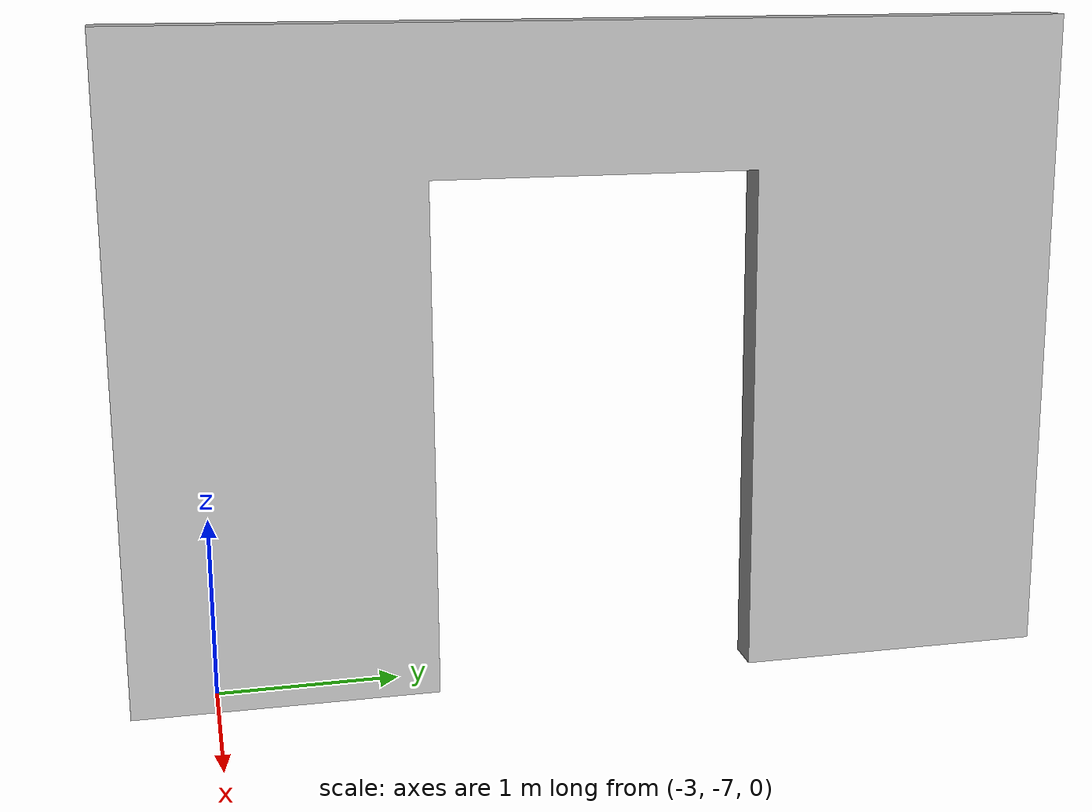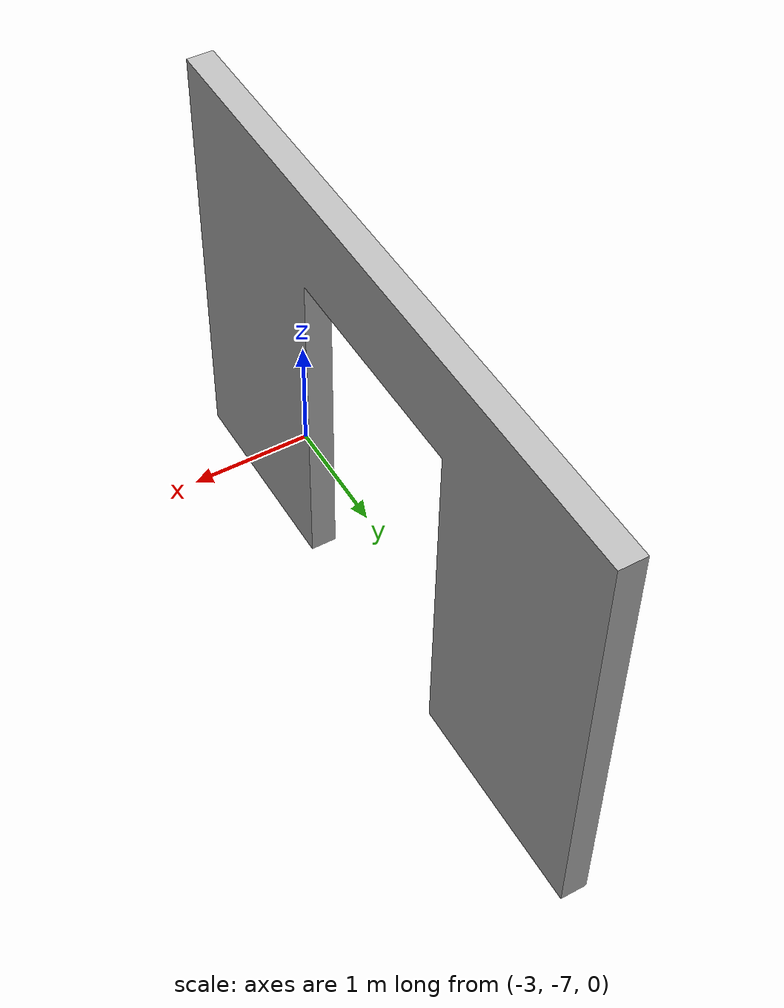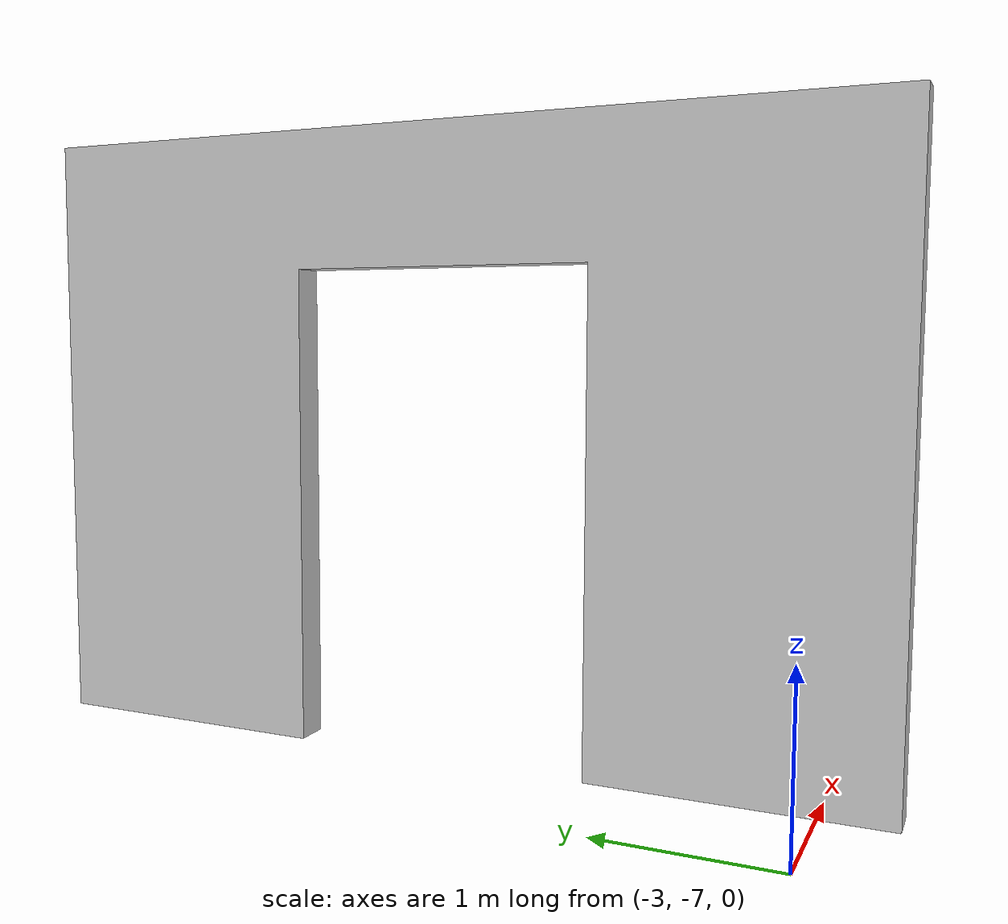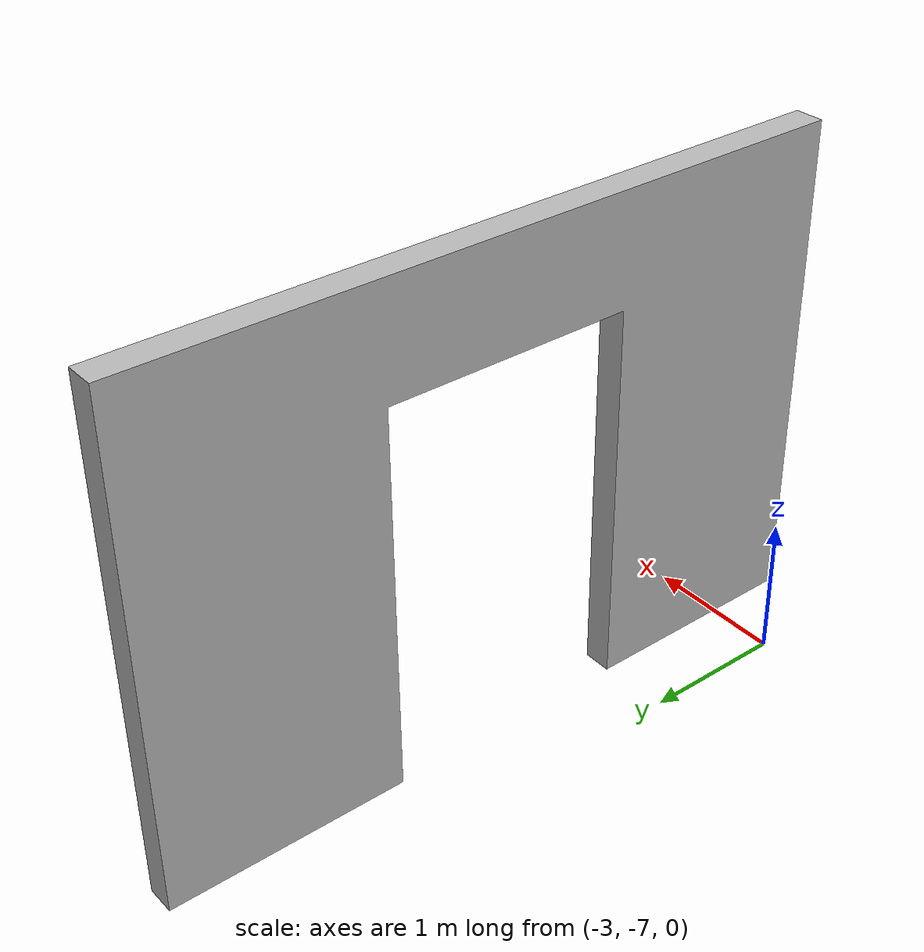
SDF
<?xml version="1.0"?>
<sdf version="1.5">
    <model name="house_wall_11">
        <static>true</static>
        <link name="link">
            <collision name="collision_wall">
                <pose>0 0 0.05 0 0 0</pose>
                <geometry>
                    <mesh>
                        <uri>model://house_scene_2_wall_11/meshes/scene_2_wall_11.dae</uri>
                    </mesh>
                </geometry>
            </collision>
            <visual name="visual_walls">
              <pose>0 0 0.05 0 0 0</pose>
              <geometry>
              <mesh>
                 <uri>model://house_scene_2_wall_11/meshes/scene_2_wall_11.dae</uri>
              </mesh>
              </geometry>
              <material>
                  <script>
                      <uri>model://house_scene_2_wall_11/materials/scripts</uri>
                      <uri>model://house_scene_2_wall_11/materials/textures</uri>
                      <name>houseMat/Diffuse</name>
                  </script>
              </material>
             </visual>

        </link>
    </model>
</sdf>
